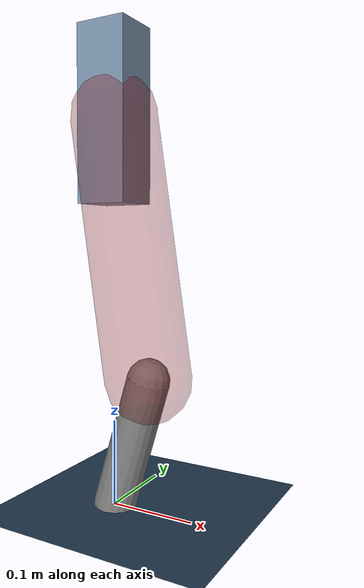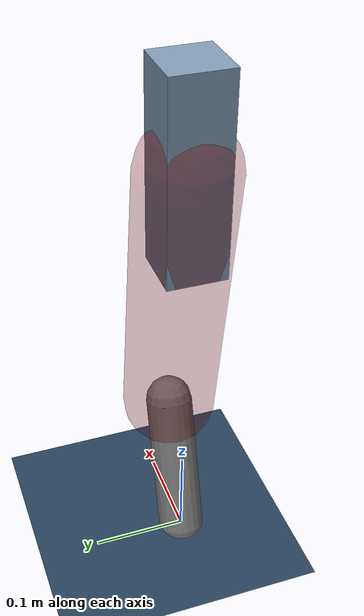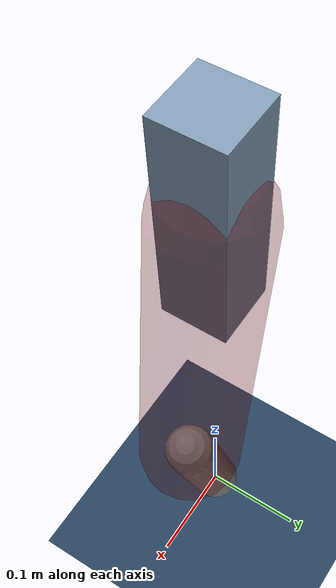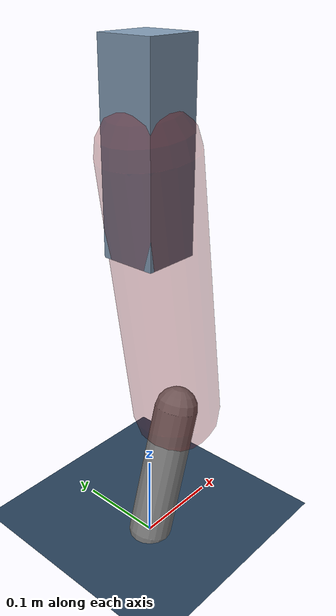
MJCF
<mujoco model="Hopper2D">
	<compiler inertiafromgeom="true" angle="radian" />
	<option timestep="0.001" integrator="implicit" cone="elliptic" solver="Newton" tolerance="1e-10" />

	<default>
		<geom contype="1" conaffinity="1" condim="3" friction="2 0.005 0.0001" solref="0.005 1" />
		<joint limited="true" damping="0.1" />
	</default>

	<asset>
		<texture name="skybox" type="skybox" builtin="gradient" rgb1=".4 .6 .8" rgb2="0 0 0" width="800" height="800" />
		<texture name="grid" type="2d" builtin="checker" rgb1=".1 .2 .3" rgb2=".2 .3 .4" width="300" height="300" mark="edge" markrgb=".2 .3 .4" />
		<material name="ground" texture="grid" texrepeat="1 1" texuniform="true" reflectance="0.1" />
		<material name="leg" rgba="0.5 0.6 0.7 1" />
	</asset>

	<worldbody>

		<geom name="floor" type="plane" size="5 5 0.25" material="ground" />

		<light directional="false" diffuse="0.8 0.8 0.8" specular="0.3 0.3 0.3" pos="0 0 2" dir="0 0 -1" />
		<light mode="targetbodycom" target="base" directional="false" diffuse="0.8 0.8 0.8" specular="0.3 0.3 0.3" pos="0 0 2" dir="0 0 -1" />

		<camera name="fixed" pos="0 -2 1" xyaxes="1 0 0 0 0 1" />
		<camera name="tracking" mode="trackcom" pos="0 -3 1" />

		<body name="root" pos="0 0 0.4537840220331011">
			<joint name="slide_x" type="slide" axis="1 0 0" range="-100 100" />
			<joint name="slide_z" type="slide" axis="0 0 1" range="0 10" />

			<body name="base" pos="0 0 0">
				<geom name="torso" type="box" size="0.03 0.03 0.1" mass="3.046" material="leg" />

				<body name="link1" pos="0 0 0" euler="0 1.4204159857062306 0">
					<joint type="hinge" axis="0 -1 0" pos="0 0 0" name="hinge1" limited="true" range="-3.14 3.14" stiffness="0" damping="0.1" />
					<geom name="thigh" type="capsule" fromto="0 0 0 0.30340190183846993 0 0" size="0.05" rgba="0.5 0 0 0.3" mass="0.9979851349638689" />

					<body name="link2" pos="0.30340190183846993 0 0" euler="0 0.43772847451268887 0">
						<joint type="hinge" axis="0 -1 0" pos="0 0 0" name="hinge2" limited="true" range="-3.14 3.14" stiffness="0" damping="0.1" />
						<geom name="shank" type="capsule" fromto="0 0 0 0.16038212019463113 0 0" size="0.025" mass="0.3669056961557049" />

					</body>
				</body>
			</body>
		</body>
	</worldbody>

	<actuator>
		<motor name="torque1" joint="hinge1" ctrlrange="-184.92494349224728 184.92494349224728" ctrllimited="true" gear="1" />
		<motor name="torque2" joint="hinge2" ctrlrange="-22.028778650496275 22.028778650496275" ctrllimited="true" gear="1" />
	</actuator>
</mujoco>
